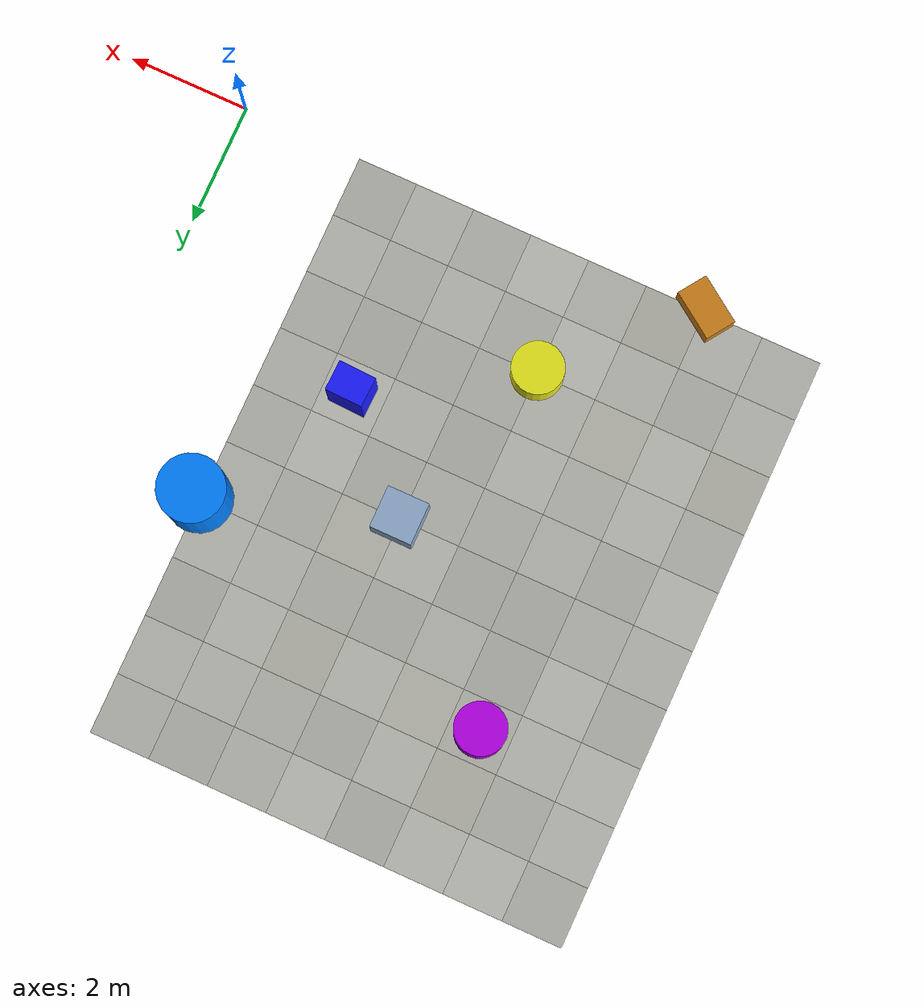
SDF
<sdf version="1.9">
 <world name="competition_world">
  <model name="t_10_00">
   <static>true</static>
   <pose>-9.500 0.500 0.025 0 0 0</pose>
   <link name="link">
    <collision name="c"><geometry><box><size>1.00 1.00 0.05</size></box></geometry></collision>
    <visual name="v">
     <geometry><box><size>1.00 1.00 0.05</size></box></geometry>
     <material>
      <ambient>0.713 0.713 0.683 1</ambient>
      <diffuse>0.713 0.713 0.683 1</diffuse>
      <specular>0.060 0.060 0.060 1</specular>
     </material>
    </visual>
   </link>
  </model>
  <model name="t_10_01">
   <static>true</static>
   <pose>-8.500 0.500 0.025 0 0 0</pose>
   <link name="link">
    <collision name="c"><geometry><box><size>1.00 1.00 0.05</size></box></geometry></collision>
    <visual name="v">
     <geometry><box><size>1.00 1.00 0.05</size></box></geometry>
     <material>
      <ambient>0.720 0.720 0.690 1</ambient>
      <diffuse>0.720 0.720 0.690 1</diffuse>
      <specular>0.060 0.060 0.060 1</specular>
     </material>
    </visual>
   </link>
  </model>
  <model name="t_10_02">
   <static>true</static>
   <pose>-7.500 0.500 0.025 0 0 0</pose>
   <link name="link">
    <collision name="c"><geometry><box><size>1.00 1.00 0.05</size></box></geometry></collision>
    <visual name="v">
     <geometry><box><size>1.00 1.00 0.05</size></box></geometry>
     <material>
      <ambient>0.684 0.684 0.654 1</ambient>
      <diffuse>0.684 0.684 0.654 1</diffuse>
      <specular>0.060 0.060 0.060 1</specular>
     </material>
    </visual>
   </link>
  </model>
  <model name="t_10_03">
   <static>true</static>
   <pose>-6.500 0.500 0.025 0 0 0</pose>
   <link name="link">
    <collision name="c"><geometry><box><size>1.00 1.00 0.05</size></box></geometry></collision>
    <visual name="v">
     <geometry><box><size>1.00 1.00 0.05</size></box></geometry>
     <material>
      <ambient>0.713 0.713 0.683 1</ambient>
      <diffuse>0.713 0.713 0.683 1</diffuse>
      <specular>0.060 0.060 0.060 1</specular>
     </material>
    </visual>
   </link>
  </model>
  <model name="t_10_04">
   <static>true</static>
   <pose>-5.500 0.500 0.025 0 0 0</pose>
   <link name="link">
    <collision name="c"><geometry><box><size>1.00 1.00 0.05</size></box></geometry></collision>
    <visual name="v">
     <geometry><box><size>1.00 1.00 0.05</size></box></geometry>
     <material>
      <ambient>0.739 0.739 0.709 1</ambient>
      <diffuse>0.739 0.739 0.709 1</diffuse>
      <specular>0.060 0.060 0.060 1</specular>
     </material>
    </visual>
   </link>
  </model>
  <model name="t_10_05">
   <static>true</static>
   <pose>-4.500 0.500 0.025 0 0 0</pose>
   <link name="link">
    <collision name="c"><geometry><box><size>1.00 1.00 0.05</size></box></geometry></collision>
    <visual name="v">
     <geometry><box><size>1.00 1.00 0.05</size></box></geometry>
     <material>
      <ambient>0.703 0.703 0.673 1</ambient>
      <diffuse>0.703 0.703 0.673 1</diffuse>
      <specular>0.060 0.060 0.060 1</specular>
     </material>
    </visual>
   </link>
  </model>
  <model name="t_10_06">
   <static>true</static>
   <pose>-3.500 0.500 0.025 0 0 0</pose>
   <link name="link">
    <collision name="c"><geometry><box><size>1.00 1.00 0.05</size></box></geometry></collision>
    <visual name="v">
     <geometry><box><size>1.00 1.00 0.05</size></box></geometry>
     <material>
      <ambient>0.723 0.723 0.693 1</ambient>
      <diffuse>0.723 0.723 0.693 1</diffuse>
      <specular>0.060 0.060 0.060 1</specular>
     </material>
    </visual>
   </link>
  </model>
  <model name="t_10_07">
   <static>true</static>
   <pose>-2.500 0.500 0.025 0 0 0</pose>
   <link name="link">
    <collision name="c"><geometry><box><size>1.00 1.00 0.05</size></box></geometry></collision>
    <visual name="v">
     <geometry><box><size>1.00 1.00 0.05</size></box></geometry>
     <material>
      <ambient>0.691 0.691 0.661 1</ambient>
      <diffuse>0.691 0.691 0.661 1</diffuse>
      <specular>0.060 0.060 0.060 1</specular>
     </material>
    </visual>
   </link>
  </model>
  <model name="t_11_00">
   <static>true</static>
   <pose>-9.500 1.500 0.025 0 0 0</pose>
   <link name="link">
    <collision name="c"><geometry><box><size>1.00 1.00 0.05</size></box></geometry></collision>
    <visual name="v">
     <geometry><box><size>1.00 1.00 0.05</size></box></geometry>
     <material>
      <ambient>0.722 0.722 0.692 1</ambient>
      <diffuse>0.722 0.722 0.692 1</diffuse>
      <specular>0.060 0.060 0.060 1</specular>
     </material>
    </visual>
   </link>
  </model>
  <model name="t_11_01">
   <static>true</static>
   <pose>-8.500 1.500 0.025 0 0 0</pose>
   <link name="link">
    <collision name="c"><geometry><box><size>1.00 1.00 0.05</size></box></geometry></collision>
    <visual name="v">
     <geometry><box><size>1.00 1.00 0.05</size></box></geometry>
     <material>
      <ambient>0.693 0.693 0.663 1</ambient>
      <diffuse>0.693 0.693 0.663 1</diffuse>
      <specular>0.060 0.060 0.060 1</specular>
     </material>
    </visual>
   </link>
  </model>
  <model name="t_11_02">
   <static>true</static>
   <pose>-7.500 1.500 0.025 0 0 0</pose>
   <link name="link">
    <collision name="c"><geometry><box><size>1.00 1.00 0.05</size></box></geometry></collision>
    <visual name="v">
     <geometry><box><size>1.00 1.00 0.05</size></box></geometry>
     <material>
      <ambient>0.717 0.717 0.687 1</ambient>
      <diffuse>0.717 0.717 0.687 1</diffuse>
      <specular>0.060 0.060 0.060 1</specular>
     </material>
    </visual>
   </link>
  </model>
  <model name="t_11_03">
   <static>true</static>
   <pose>-6.500 1.500 0.025 0 0 0</pose>
   <link name="link">
    <collision name="c"><geometry><box><size>1.00 1.00 0.05</size></box></geometry></collision>
    <visual name="v">
     <geometry><box><size>1.00 1.00 0.05</size></box></geometry>
     <material>
      <ambient>0.740 0.740 0.710 1</ambient>
      <diffuse>0.740 0.740 0.710 1</diffuse>
      <specular>0.060 0.060 0.060 1</specular>
     </material>
    </visual>
   </link>
  </model>
  <model name="t_11_04">
   <static>true</static>
   <pose>-5.500 1.500 0.025 0 0 0</pose>
   <link name="link">
    <collision name="c"><geometry><box><size>1.00 1.00 0.05</size></box></geometry></collision>
    <visual name="v">
     <geometry><box><size>1.00 1.00 0.05</size></box></geometry>
     <material>
      <ambient>0.698 0.698 0.668 1</ambient>
      <diffuse>0.698 0.698 0.668 1</diffuse>
      <specular>0.060 0.060 0.060 1</specular>
     </material>
    </visual>
   </link>
  </model>
  <model name="t_11_05">
   <static>true</static>
   <pose>-4.500 1.500 0.025 0 0 0</pose>
   <link name="link">
    <collision name="c"><geometry><box><size>1.00 1.00 0.05</size></box></geometry></collision>
    <visual name="v">
     <geometry><box><size>1.00 1.00 0.05</size></box></geometry>
     <material>
      <ambient>0.720 0.720 0.690 1</ambient>
      <diffuse>0.720 0.720 0.690 1</diffuse>
      <specular>0.060 0.060 0.060 1</specular>
     </material>
    </visual>
   </link>
  </model>
  <model name="t_11_06">
   <static>true</static>
   <pose>-3.500 1.500 0.025 0 0 0</pose>
   <link name="link">
    <collision name="c"><geometry><box><size>1.00 1.00 0.05</size></box></geometry></collision>
    <visual name="v">
     <geometry><box><size>1.00 1.00 0.05</size></box></geometry>
     <material>
      <ambient>0.700 0.700 0.670 1</ambient>
      <diffuse>0.700 0.700 0.670 1</diffuse>
      <specular>0.060 0.060 0.060 1</specular>
     </material>
    </visual>
   </link>
  </model>
  <model name="t_11_07">
   <static>true</static>
   <pose>-2.500 1.500 0.025 0 0 0</pose>
   <link name="link">
    <collision name="c"><geometry><box><size>1.00 1.00 0.05</size></box></geometry></collision>
    <visual name="v">
     <geometry><box><size>1.00 1.00 0.05</size></box></geometry>
     <material>
      <ambient>0.719 0.719 0.689 1</ambient>
      <diffuse>0.719 0.719 0.689 1</diffuse>
      <specular>0.060 0.060 0.060 1</specular>
     </material>
    </visual>
   </link>
  </model>
  <model name="t_12_00">
   <static>true</static>
   <pose>-9.500 2.500 0.025 0 0 0</pose>
   <link name="link">
    <collision name="c"><geometry><box><size>1.00 1.00 0.05</size></box></geometry></collision>
    <visual name="v">
     <geometry><box><size>1.00 1.00 0.05</size></box></geometry>
     <material>
      <ambient>0.694 0.694 0.664 1</ambient>
      <diffuse>0.694 0.694 0.664 1</diffuse>
      <specular>0.060 0.060 0.060 1</specular>
     </material>
    </visual>
   </link>
  </model>
  <model name="t_12_01">
   <static>true</static>
   <pose>-8.500 2.500 0.025 0 0 0</pose>
   <link name="link">
    <collision name="c"><geometry><box><size>1.00 1.00 0.05</size></box></geometry></collision>
    <visual name="v">
     <geometry><box><size>1.00 1.00 0.05</size></box></geometry>
     <material>
      <ambient>0.737 0.737 0.707 1</ambient>
      <diffuse>0.737 0.737 0.707 1</diffuse>
      <specular>0.060 0.060 0.060 1</specular>
     </material>
    </visual>
   </link>
  </model>
  <model name="t_12_02">
   <static>true</static>
   <pose>-7.500 2.500 0.025 0 0 0</pose>
   <link name="link">
    <collision name="c"><geometry><box><size>1.00 1.00 0.05</size></box></geometry></collision>
    <visual name="v">
     <geometry><box><size>1.00 1.00 0.05</size></box></geometry>
     <material>
      <ambient>0.709 0.709 0.679 1</ambient>
      <diffuse>0.709 0.709 0.679 1</diffuse>
      <specular>0.060 0.060 0.060 1</specular>
     </material>
    </visual>
   </link>
  </model>
  <model name="t_12_03">
   <static>true</static>
   <pose>-6.500 2.500 0.025 0 0 0</pose>
   <link name="link">
    <collision name="c"><geometry><box><size>1.00 1.00 0.05</size></box></geometry></collision>
    <visual name="v">
     <geometry><box><size>1.00 1.00 0.05</size></box></geometry>
     <material>
      <ambient>0.721 0.721 0.691 1</ambient>
      <diffuse>0.721 0.721 0.691 1</diffuse>
      <specular>0.060 0.060 0.060 1</specular>
     </material>
    </visual>
   </link>
  </model>
  <model name="t_12_04">
   <static>true</static>
   <pose>-5.500 2.500 0.025 0 0 0</pose>
   <link name="link">
    <collision name="c"><geometry><box><size>1.00 1.00 0.05</size></box></geometry></collision>
    <visual name="v">
     <geometry><box><size>1.00 1.00 0.05</size></box></geometry>
     <material>
      <ambient>0.697 0.697 0.667 1</ambient>
      <diffuse>0.697 0.697 0.667 1</diffuse>
      <specular>0.060 0.060 0.060 1</specular>
     </material>
    </visual>
   </link>
  </model>
  <model name="t_12_05">
   <static>true</static>
   <pose>-4.500 2.500 0.025 0 0 0</pose>
   <link name="link">
    <collision name="c"><geometry><box><size>1.00 1.00 0.05</size></box></geometry></collision>
    <visual name="v">
     <geometry><box><size>1.00 1.00 0.05</size></box></geometry>
     <material>
      <ambient>0.690 0.690 0.660 1</ambient>
      <diffuse>0.690 0.690 0.660 1</diffuse>
      <specular>0.060 0.060 0.060 1</specular>
     </material>
    </visual>
   </link>
  </model>
  <model name="t_12_06">
   <static>true</static>
   <pose>-3.500 2.500 0.025 0 0 0</pose>
   <link name="link">
    <collision name="c"><geometry><box><size>1.00 1.00 0.05</size></box></geometry></collision>
    <visual name="v">
     <geometry><box><size>1.00 1.00 0.05</size></box></geometry>
     <material>
      <ambient>0.681 0.681 0.651 1</ambient>
      <diffuse>0.681 0.681 0.651 1</diffuse>
      <specular>0.060 0.060 0.060 1</specular>
     </material>
    </visual>
   </link>
  </model>
  <model name="t_12_07">
   <static>true</static>
   <pose>-2.500 2.500 0.025 0 0 0</pose>
   <link name="link">
    <collision name="c"><geometry><box><size>1.00 1.00 0.05</size></box></geometry></collision>
    <visual name="v">
     <geometry><box><size>1.00 1.00 0.05</size></box></geometry>
     <material>
      <ambient>0.698 0.698 0.668 1</ambient>
      <diffuse>0.698 0.698 0.668 1</diffuse>
      <specular>0.060 0.060 0.060 1</specular>
     </material>
    </visual>
   </link>
  </model>
  <model name="t_13_00">
   <static>true</static>
   <pose>-9.500 3.500 0.025 0 0 0</pose>
   <link name="link">
    <collision name="c"><geometry><box><size>1.00 1.00 0.05</size></box></geometry></collision>
    <visual name="v">
     <geometry><box><size>1.00 1.00 0.05</size></box></geometry>
     <material>
      <ambient>0.703 0.703 0.673 1</ambient>
      <diffuse>0.703 0.703 0.673 1</diffuse>
      <specular>0.060 0.060 0.060 1</specular>
     </material>
    </visual>
   </link>
  </model>
  <model name="t_13_01">
   <static>true</static>
   <pose>-8.500 3.500 0.025 0 0 0</pose>
   <link name="link">
    <collision name="c"><geometry><box><size>1.00 1.00 0.05</size></box></geometry></collision>
    <visual name="v">
     <geometry><box><size>1.00 1.00 0.05</size></box></geometry>
     <material>
      <ambient>0.732 0.732 0.702 1</ambient>
      <diffuse>0.732 0.732 0.702 1</diffuse>
      <specular>0.060 0.060 0.060 1</specular>
     </material>
    </visual>
   </link>
  </model>
  <model name="t_13_02">
   <static>true</static>
   <pose>-7.500 3.500 0.025 0 0 0</pose>
   <link name="link">
    <collision name="c"><geometry><box><size>1.00 1.00 0.05</size></box></geometry></collision>
    <visual name="v">
     <geometry><box><size>1.00 1.00 0.05</size></box></geometry>
     <material>
      <ambient>0.706 0.706 0.676 1</ambient>
      <diffuse>0.706 0.706 0.676 1</diffuse>
      <specular>0.060 0.060 0.060 1</specular>
     </material>
    </visual>
   </link>
  </model>
  <model name="t_13_03">
   <static>true</static>
   <pose>-6.500 3.500 0.025 0 0 0</pose>
   <link name="link">
    <collision name="c"><geometry><box><size>1.00 1.00 0.05</size></box></geometry></collision>
    <visual name="v">
     <geometry><box><size>1.00 1.00 0.05</size></box></geometry>
     <material>
      <ambient>0.725 0.725 0.695 1</ambient>
      <diffuse>0.725 0.725 0.695 1</diffuse>
      <specular>0.060 0.060 0.060 1</specular>
     </material>
    </visual>
   </link>
  </model>
  <model name="t_13_04">
   <static>true</static>
   <pose>-5.500 3.500 0.025 0 0 0</pose>
   <link name="link">
    <collision name="c"><geometry><box><size>1.00 1.00 0.05</size></box></geometry></collision>
    <visual name="v">
     <geometry><box><size>1.00 1.00 0.05</size></box></geometry>
     <material>
      <ambient>0.681 0.681 0.651 1</ambient>
      <diffuse>0.681 0.681 0.651 1</diffuse>
      <specular>0.060 0.060 0.060 1</specular>
     </material>
    </visual>
   </link>
  </model>
  <model name="t_13_05">
   <static>true</static>
   <pose>-4.500 3.500 0.025 0 0 0</pose>
   <link name="link">
    <collision name="c"><geometry><box><size>1.00 1.00 0.05</size></box></geometry></collision>
    <visual name="v">
     <geometry><box><size>1.00 1.00 0.05</size></box></geometry>
     <material>
      <ambient>0.716 0.716 0.686 1</ambient>
      <diffuse>0.716 0.716 0.686 1</diffuse>
      <specular>0.060 0.060 0.060 1</specular>
     </material>
    </visual>
   </link>
  </model>
  <model name="t_13_06">
   <static>true</static>
   <pose>-3.500 3.500 0.025 0 0 0</pose>
   <link name="link">
    <collision name="c"><geometry><box><size>1.00 1.00 0.05</size></box></geometry></collision>
    <visual name="v">
     <geometry><box><size>1.00 1.00 0.05</size></box></geometry>
     <material>
      <ambient>0.737 0.737 0.707 1</ambient>
      <diffuse>0.737 0.737 0.707 1</diffuse>
      <specular>0.060 0.060 0.060 1</specular>
     </material>
    </visual>
   </link>
  </model>
  <model name="t_13_07">
   <static>true</static>
   <pose>-2.500 3.500 0.025 0 0 0</pose>
   <link name="link">
    <collision name="c"><geometry><box><size>1.00 1.00 0.05</size></box></geometry></collision>
    <visual name="v">
     <geometry><box><size>1.00 1.00 0.05</size></box></geometry>
     <material>
      <ambient>0.706 0.706 0.676 1</ambient>
      <diffuse>0.706 0.706 0.676 1</diffuse>
      <specular>0.060 0.060 0.060 1</specular>
     </material>
    </visual>
   </link>
  </model>
  <model name="t_14_00">
   <static>true</static>
   <pose>-9.500 4.500 0.025 0 0 0</pose>
   <link name="link">
    <collision name="c"><geometry><box><size>1.00 1.00 0.05</size></box></geometry></collision>
    <visual name="v">
     <geometry><box><size>1.00 1.00 0.05</size></box></geometry>
     <material>
      <ambient>0.734 0.734 0.704 1</ambient>
      <diffuse>0.734 0.734 0.704 1</diffuse>
      <specular>0.060 0.060 0.060 1</specular>
     </material>
    </visual>
   </link>
  </model>
  <model name="t_14_01">
   <static>true</static>
   <pose>-8.500 4.500 0.025 0 0 0</pose>
   <link name="link">
    <collision name="c"><geometry><box><size>1.00 1.00 0.05</size></box></geometry></collision>
    <visual name="v">
     <geometry><box><size>1.00 1.00 0.05</size></box></geometry>
     <material>
      <ambient>0.690 0.690 0.660 1</ambient>
      <diffuse>0.690 0.690 0.660 1</diffuse>
      <specular>0.060 0.060 0.060 1</specular>
     </material>
    </visual>
   </link>
  </model>
  <model name="t_14_02">
   <static>true</static>
   <pose>-7.500 4.500 0.025 0 0 0</pose>
   <link name="link">
    <collision name="c"><geometry><box><size>1.00 1.00 0.05</size></box></geometry></collision>
    <visual name="v">
     <geometry><box><size>1.00 1.00 0.05</size></box></geometry>
     <material>
      <ambient>0.710 0.710 0.680 1</ambient>
      <diffuse>0.710 0.710 0.680 1</diffuse>
      <specular>0.060 0.060 0.060 1</specular>
     </material>
    </visual>
   </link>
  </model>
  <model name="t_14_03">
   <static>true</static>
   <pose>-6.500 4.500 0.025 0 0 0</pose>
   <link name="link">
    <collision name="c"><geometry><box><size>1.00 1.00 0.05</size></box></geometry></collision>
    <visual name="v">
     <geometry><box><size>1.00 1.00 0.05</size></box></geometry>
     <material>
      <ambient>0.698 0.698 0.668 1</ambient>
      <diffuse>0.698 0.698 0.668 1</diffuse>
      <specular>0.060 0.060 0.060 1</specular>
     </material>
    </visual>
   </link>
  </model>
  <model name="t_14_04">
   <static>true</static>
   <pose>-5.500 4.500 0.025 0 0 0</pose>
   <link name="link">
    <collision name="c"><geometry><box><size>1.00 1.00 0.05</size></box></geometry></collision>
    <visual name="v">
     <geometry><box><size>1.00 1.00 0.05</size></box></geometry>
     <material>
      <ambient>0.701 0.701 0.671 1</ambient>
      <diffuse>0.701 0.701 0.671 1</diffuse>
      <specular>0.060 0.060 0.060 1</specular>
     </material>
    </visual>
   </link>
  </model>
  <model name="t_14_05">
   <static>true</static>
   <pose>-4.500 4.500 0.025 0 0 0</pose>
   <link name="link">
    <collision name="c"><geometry><box><size>1.00 1.00 0.05</size></box></geometry></collision>
    <visual name="v">
     <geometry><box><size>1.00 1.00 0.05</size></box></geometry>
     <material>
      <ambient>0.686 0.686 0.656 1</ambient>
      <diffuse>0.686 0.686 0.656 1</diffuse>
      <specular>0.060 0.060 0.060 1</specular>
     </material>
    </visual>
   </link>
  </model>
  <model name="t_14_06">
   <static>true</static>
   <pose>-3.500 4.500 0.025 0 0 0</pose>
   <link name="link">
    <collision name="c"><geometry><box><size>1.00 1.00 0.05</size></box></geometry></collision>
    <visual name="v">
     <geometry><box><size>1.00 1.00 0.05</size></box></geometry>
     <material>
      <ambient>0.734 0.734 0.704 1</ambient>
      <diffuse>0.734 0.734 0.704 1</diffuse>
      <specular>0.060 0.060 0.060 1</specular>
     </material>
    </visual>
   </link>
  </model>
  <model name="t_14_07">
   <static>true</static>
   <pose>-2.500 4.500 0.025 0 0 0</pose>
   <link name="link">
    <collision name="c"><geometry><box><size>1.00 1.00 0.05</size></box></geometry></collision>
    <visual name="v">
     <geometry><box><size>1.00 1.00 0.05</size></box></geometry>
     <material>
      <ambient>0.695 0.695 0.665 1</ambient>
      <diffuse>0.695 0.695 0.665 1</diffuse>
      <specular>0.060 0.060 0.060 1</specular>
     </material>
    </visual>
   </link>
  </model>
  <model name="t_15_00">
   <static>true</static>
   <pose>-9.500 5.500 0.025 0 0 0</pose>
   <link name="link">
    <collision name="c"><geometry><box><size>1.00 1.00 0.05</size></box></geometry></collision>
    <visual name="v">
     <geometry><box><size>1.00 1.00 0.05</size></box></geometry>
     <material>
      <ambient>0.717 0.717 0.687 1</ambient>
      <diffuse>0.717 0.717 0.687 1</diffuse>
      <specular>0.060 0.060 0.060 1</specular>
     </material>
    </visual>
   </link>
  </model>
  <model name="t_15_01">
   <static>true</static>
   <pose>-8.500 5.500 0.025 0 0 0</pose>
   <link name="link">
    <collision name="c"><geometry><box><size>1.00 1.00 0.05</size></box></geometry></collision>
    <visual name="v">
     <geometry><box><size>1.00 1.00 0.05</size></box></geometry>
     <material>
      <ambient>0.705 0.705 0.675 1</ambient>
      <diffuse>0.705 0.705 0.675 1</diffuse>
      <specular>0.060 0.060 0.060 1</specular>
     </material>
    </visual>
   </link>
  </model>
  <model name="t_15_02">
   <static>true</static>
   <pose>-7.500 5.500 0.025 0 0 0</pose>
   <link name="link">
    <collision name="c"><geometry><box><size>1.00 1.00 0.05</size></box></geometry></collision>
    <visual name="v">
     <geometry><box><size>1.00 1.00 0.05</size></box></geometry>
     <material>
      <ambient>0.681 0.681 0.651 1</ambient>
      <diffuse>0.681 0.681 0.651 1</diffuse>
      <specular>0.060 0.060 0.060 1</specular>
     </material>
    </visual>
   </link>
  </model>
  <model name="t_15_03">
   <static>true</static>
   <pose>-6.500 5.500 0.025 0 0 0</pose>
   <link name="link">
    <collision name="c"><geometry><box><size>1.00 1.00 0.05</size></box></geometry></collision>
    <visual name="v">
     <geometry><box><size>1.00 1.00 0.05</size></box></geometry>
     <material>
      <ambient>0.682 0.682 0.652 1</ambient>
      <diffuse>0.682 0.682 0.652 1</diffuse>
      <specular>0.060 0.060 0.060 1</specular>
     </material>
    </visual>
   </link>
  </model>
  <model name="t_15_04">
   <static>true</static>
   <pose>-5.500 5.500 0.025 0 0 0</pose>
   <link name="link">
    <collision name="c"><geometry><box><size>1.00 1.00 0.05</size></box></geometry></collision>
    <visual name="v">
     <geometry><box><size>1.00 1.00 0.05</size></box></geometry>
     <material>
      <ambient>0.724 0.724 0.694 1</ambient>
      <diffuse>0.724 0.724 0.694 1</diffuse>
      <specular>0.060 0.060 0.060 1</specular>
     </material>
    </visual>
   </link>
  </model>
  <model name="t_15_05">
   <static>true</static>
   <pose>-4.500 5.500 0.025 0 0 0</pose>
   <link name="link">
    <collision name="c"><geometry><box><size>1.00 1.00 0.05</size></box></geometry></collision>
    <visual name="v">
     <geometry><box><size>1.00 1.00 0.05</size></box></geometry>
     <material>
      <ambient>0.709 0.709 0.679 1</ambient>
      <diffuse>0.709 0.709 0.679 1</diffuse>
      <specular>0.060 0.060 0.060 1</specular>
     </material>
    </visual>
   </link>
  </model>
  <model name="t_15_06">
   <static>true</static>
   <pose>-3.500 5.500 0.025 0 0 0</pose>
   <link name="link">
    <collision name="c"><geometry><box><size>1.00 1.00 0.05</size></box></geometry></collision>
    <visual name="v">
     <geometry><box><size>1.00 1.00 0.05</size></box></geometry>
     <material>
      <ambient>0.697 0.697 0.667 1</ambient>
      <diffuse>0.697 0.697 0.667 1</diffuse>
      <specular>0.060 0.060 0.060 1</specular>
     </material>
    </visual>
   </link>
  </model>
  <model name="t_15_07">
   <static>true</static>
   <pose>-2.500 5.500 0.025 0 0 0</pose>
   <link name="link">
    <collision name="c"><geometry><box><size>1.00 1.00 0.05</size></box></geometry></collision>
    <visual name="v">
     <geometry><box><size>1.00 1.00 0.05</size></box></geometry>
     <material>
      <ambient>0.712 0.712 0.682 1</ambient>
      <diffuse>0.712 0.712 0.682 1</diffuse>
      <specular>0.060 0.060 0.060 1</specular>
     </material>
    </visual>
   </link>
  </model>
  <model name="t_16_00">
   <static>true</static>
   <pose>-9.500 6.500 0.025 0 0 0</pose>
   <link name="link">
    <collision name="c"><geometry><box><size>1.00 1.00 0.05</size></box></geometry></collision>
    <visual name="v">
     <geometry><box><size>1.00 1.00 0.05</size></box></geometry>
     <material>
      <ambient>0.697 0.697 0.667 1</ambient>
      <diffuse>0.697 0.697 0.667 1</diffuse>
      <specular>0.060 0.060 0.060 1</specular>
     </material>
    </visual>
   </link>
  </model>
  <model name="t_16_01">
   <static>true</static>
   <pose>-8.500 6.500 0.025 0 0 0</pose>
   <link name="link">
    <collision name="c"><geometry><box><size>1.00 1.00 0.05</size></box></geometry></collision>
    <visual name="v">
     <geometry><box><size>1.00 1.00 0.05</size></box></geometry>
     <material>
      <ambient>0.737 0.737 0.707 1</ambient>
      <diffuse>0.737 0.737 0.707 1</diffuse>
      <specular>0.060 0.060 0.060 1</specular>
     </material>
    </visual>
   </link>
  </model>
  <model name="t_16_02">
   <static>true</static>
   <pose>-7.500 6.500 0.025 0 0 0</pose>
   <link name="link">
    <collision name="c"><geometry><box><size>1.00 1.00 0.05</size></box></geometry></collision>
    <visual name="v">
     <geometry><box><size>1.00 1.00 0.05</size></box></geometry>
     <material>
      <ambient>0.683 0.683 0.653 1</ambient>
      <diffuse>0.683 0.683 0.653 1</diffuse>
      <specular>0.060 0.060 0.060 1</specular>
     </material>
    </visual>
   </link>
  </model>
  <model name="t_16_03">
   <static>true</static>
   <pose>-6.500 6.500 0.025 0 0 0</pose>
   <link name="link">
    <collision name="c"><geometry><box><size>1.00 1.00 0.05</size></box></geometry></collision>
    <visual name="v">
     <geometry><box><size>1.00 1.00 0.05</size></box></geometry>
     <material>
      <ambient>0.713 0.713 0.683 1</ambient>
      <diffuse>0.713 0.713 0.683 1</diffuse>
      <specular>0.060 0.060 0.060 1</specular>
     </material>
    </visual>
   </link>
  </model>
  <model name="t_16_04">
   <static>true</static>
   <pose>-5.500 6.500 0.025 0 0 0</pose>
   <link name="link">
    <collision name="c"><geometry><box><size>1.00 1.00 0.05</size></box></geometry></collision>
    <visual name="v">
     <geometry><box><size>1.00 1.00 0.05</size></box></geometry>
     <material>
      <ambient>0.685 0.685 0.655 1</ambient>
      <diffuse>0.685 0.685 0.655 1</diffuse>
      <specular>0.060 0.060 0.060 1</specular>
     </material>
    </visual>
   </link>
  </model>
  <model name="t_16_05">
   <static>true</static>
   <pose>-4.500 6.500 0.025 0 0 0</pose>
   <link name="link">
    <collision name="c"><geometry><box><size>1.00 1.00 0.05</size></box></geometry></collision>
    <visual name="v">
     <geometry><box><size>1.00 1.00 0.05</size></box></geometry>
     <material>
      <ambient>0.691 0.691 0.661 1</ambient>
      <diffuse>0.691 0.691 0.661 1</diffuse>
      <specular>0.060 0.060 0.060 1</specular>
     </material>
    </visual>
   </link>
  </model>
  <model name="t_16_06">
   <static>true</static>
   <pose>-3.500 6.500 0.025 0 0 0</pose>
   <link name="link">
    <collision name="c"><geometry><box><size>1.00 1.00 0.05</size></box></geometry></collision>
    <visual name="v">
     <geometry><box><size>1.00 1.00 0.05</size></box></geometry>
     <material>
      <ambient>0.718 0.718 0.688 1</ambient>
      <diffuse>0.718 0.718 0.688 1</diffuse>
      <specular>0.060 0.060 0.060 1</specular>
     </material>
    </visual>
   </link>
  </model>
  <model name="t_16_07">
   <static>true</static>
   <pose>-2.500 6.500 0.025 0 0 0</pose>
   <link name="link">
    <collision name="c"><geometry><box><size>1.00 1.00 0.05</size></box></geometry></collision>
    <visual name="v">
     <geometry><box><size>1.00 1.00 0.05</size></box></geometry>
     <material>
      <ambient>0.722 0.722 0.692 1</ambient>
      <diffuse>0.722 0.722 0.692 1</diffuse>
      <specular>0.060 0.060 0.060 1</specular>
     </material>
    </visual>
   </link>
  </model>
  <model name="t_17_00">
   <static>true</static>
   <pose>-9.500 7.500 0.025 0 0 0</pose>
   <link name="link">
    <collision name="c"><geometry><box><size>1.00 1.00 0.05</size></box></geometry></collision>
    <visual name="v">
     <geometry><box><size>1.00 1.00 0.05</size></box></geometry>
     <material>
      <ambient>0.737 0.737 0.707 1</ambient>
      <diffuse>0.737 0.737 0.707 1</diffuse>
      <specular>0.060 0.060 0.060 1</specular>
     </material>
    </visual>
   </link>
  </model>
  <model name="t_17_01">
   <static>true</static>
   <pose>-8.500 7.500 0.025 0 0 0</pose>
   <link name="link">
    <collision name="c"><geometry><box><size>1.00 1.00 0.05</size></box></geometry></collision>
    <visual name="v">
     <geometry><box><size>1.00 1.00 0.05</size></box></geometry>
     <material>
      <ambient>0.725 0.725 0.695 1</ambient>
      <diffuse>0.725 0.725 0.695 1</diffuse>
      <specular>0.060 0.060 0.060 1</specular>
     </material>
    </visual>
   </link>
  </model>
  <model name="t_17_02">
   <static>true</static>
   <pose>-7.500 7.500 0.025 0 0 0</pose>
   <link name="link">
    <collision name="c"><geometry><box><size>1.00 1.00 0.05</size></box></geometry></collision>
    <visual name="v">
     <geometry><box><size>1.00 1.00 0.05</size></box></geometry>
     <material>
      <ambient>0.700 0.700 0.670 1</ambient>
      <diffuse>0.700 0.700 0.670 1</diffuse>
      <specular>0.060 0.060 0.060 1</specular>
     </material>
    </visual>
   </link>
  </model>
  <model name="t_17_03">
   <static>true</static>
   <pose>-6.500 7.500 0.025 0 0 0</pose>
   <link name="link">
    <collision name="c"><geometry><box><size>1.00 1.00 0.05</size></box></geometry></collision>
    <visual name="v">
     <geometry><box><size>1.00 1.00 0.05</size></box></geometry>
     <material>
      <ambient>0.709 0.709 0.679 1</ambient>
      <diffuse>0.709 0.709 0.679 1</diffuse>
      <specular>0.060 0.060 0.060 1</specular>
     </material>
    </visual>
   </link>
  </model>
  <model name="t_17_04">
   <static>true</static>
   <pose>-5.500 7.500 0.025 0 0 0</pose>
   <link name="link">
    <collision name="c"><geometry><box><size>1.00 1.00 0.05</size></box></geometry></collision>
    <visual name="v">
     <geometry><box><size>1.00 1.00 0.05</size></box></geometry>
     <material>
      <ambient>0.724 0.724 0.694 1</ambient>
      <diffuse>0.724 0.724 0.694 1</diffuse>
      <specular>0.060 0.060 0.060 1</specular>
     </material>
    </visual>
   </link>
  </model>
  <model name="t_17_05">
   <static>true</static>
   <pose>-4.500 7.500 0.025 0 0 0</pose>
   <link name="link">
    <collision name="c"><geometry><box><size>1.00 1.00 0.05</size></box></geometry></collision>
    <visual name="v">
     <geometry><box><size>1.00 1.00 0.05</size></box></geometry>
     <material>
      <ambient>0.694 0.694 0.664 1</ambient>
      <diffuse>0.694 0.694 0.664 1</diffuse>
      <specular>0.060 0.060 0.060 1</specular>
     </material>
    </visual>
   </link>
  </model>
  <model name="t_17_06">
   <static>true</static>
   <pose>-3.500 7.500 0.025 0 0 0</pose>
   <link name="link">
    <collision name="c"><geometry><box><size>1.00 1.00 0.05</size></box></geometry></collision>
    <visual name="v">
     <geometry><box><size>1.00 1.00 0.05</size></box></geometry>
     <material>
      <ambient>0.728 0.728 0.698 1</ambient>
      <diffuse>0.728 0.728 0.698 1</diffuse>
      <specular>0.060 0.060 0.060 1</specular>
     </material>
    </visual>
   </link>
  </model>
  <model name="t_17_07">
   <static>true</static>
   <pose>-2.500 7.500 0.025 0 0 0</pose>
   <link name="link">
    <collision name="c"><geometry><box><size>1.00 1.00 0.05</size></box></geometry></collision>
    <visual name="v">
     <geometry><box><size>1.00 1.00 0.05</size></box></geometry>
     <material>
      <ambient>0.683 0.683 0.653 1</ambient>
      <diffuse>0.683 0.683 0.653 1</diffuse>
      <specular>0.060 0.060 0.060 1</specular>
     </material>
    </visual>
   </link>
  </model>
  <model name="t_18_00">
   <static>true</static>
   <pose>-9.500 8.500 0.025 0 0 0</pose>
   <link name="link">
    <collision name="c"><geometry><box><size>1.00 1.00 0.05</size></box></geometry></collision>
    <visual name="v">
     <geometry><box><size>1.00 1.00 0.05</size></box></geometry>
     <material>
      <ambient>0.727 0.727 0.697 1</ambient>
      <diffuse>0.727 0.727 0.697 1</diffuse>
      <specular>0.060 0.060 0.060 1</specular>
     </material>
    </visual>
   </link>
  </model>
  <model name="t_18_01">
   <static>true</static>
   <pose>-8.500 8.500 0.025 0 0 0</pose>
   <link name="link">
    <collision name="c"><geometry><box><size>1.00 1.00 0.05</size></box></geometry></collision>
    <visual name="v">
     <geometry><box><size>1.00 1.00 0.05</size></box></geometry>
     <material>
      <ambient>0.698 0.698 0.668 1</ambient>
      <diffuse>0.698 0.698 0.668 1</diffuse>
      <specular>0.060 0.060 0.060 1</specular>
     </material>
    </visual>
   </link>
  </model>
  <model name="t_18_02">
   <static>true</static>
   <pose>-7.500 8.500 0.025 0 0 0</pose>
   <link name="link">
    <collision name="c"><geometry><box><size>1.00 1.00 0.05</size></box></geometry></collision>
    <visual name="v">
     <geometry><box><size>1.00 1.00 0.05</size></box></geometry>
     <material>
      <ambient>0.694 0.694 0.664 1</ambient>
      <diffuse>0.694 0.694 0.664 1</diffuse>
      <specular>0.060 0.060 0.060 1</specular>
     </material>
    </visual>
   </link>
  </model>
  <model name="t_18_03">
   <static>true</static>
   <pose>-6.500 8.500 0.025 0 0 0</pose>
   <link name="link">
    <collision name="c"><geometry><box><size>1.00 1.00 0.05</size></box></geometry></collision>
    <visual name="v">
     <geometry><box><size>1.00 1.00 0.05</size></box></geometry>
     <material>
      <ambient>0.726 0.726 0.696 1</ambient>
      <diffuse>0.726 0.726 0.696 1</diffuse>
      <specular>0.060 0.060 0.060 1</specular>
     </material>
    </visual>
   </link>
  </model>
  <model name="t_18_04">
   <static>true</static>
   <pose>-5.500 8.500 0.025 0 0 0</pose>
   <link name="link">
    <collision name="c"><geometry><box><size>1.00 1.00 0.05</size></box></geometry></collision>
    <visual name="v">
     <geometry><box><size>1.00 1.00 0.05</size></box></geometry>
     <material>
      <ambient>0.687 0.687 0.657 1</ambient>
      <diffuse>0.687 0.687 0.657 1</diffuse>
      <specular>0.060 0.060 0.060 1</specular>
     </material>
    </visual>
   </link>
  </model>
  <model name="t_18_05">
   <static>true</static>
   <pose>-4.500 8.500 0.025 0 0 0</pose>
   <link name="link">
    <collision name="c"><geometry><box><size>1.00 1.00 0.05</size></box></geometry></collision>
    <visual name="v">
     <geometry><box><size>1.00 1.00 0.05</size></box></geometry>
     <material>
      <ambient>0.700 0.700 0.670 1</ambient>
      <diffuse>0.700 0.700 0.670 1</diffuse>
      <specular>0.060 0.060 0.060 1</specular>
     </material>
    </visual>
   </link>
  </model>
  <model name="t_18_06">
   <static>true</static>
   <pose>-3.500 8.500 0.025 0 0 0</pose>
   <link name="link">
    <collision name="c"><geometry><box><size>1.00 1.00 0.05</size></box></geometry></collision>
    <visual name="v">
     <geometry><box><size>1.00 1.00 0.05</size></box></geometry>
     <material>
      <ambient>0.716 0.716 0.686 1</ambient>
      <diffuse>0.716 0.716 0.686 1</diffuse>
      <specular>0.060 0.060 0.060 1</specular>
     </material>
    </visual>
   </link>
  </model>
  <model name="t_18_07">
   <static>true</static>
   <pose>-2.500 8.500 0.025 0 0 0</pose>
   <link name="link">
    <collision name="c"><geometry><box><size>1.00 1.00 0.05</size></box></geometry></collision>
    <visual name="v">
     <geometry><box><size>1.00 1.00 0.05</size></box></geometry>
     <material>
      <ambient>0.710 0.710 0.680 1</ambient>
      <diffuse>0.710 0.710 0.680 1</diffuse>
      <specular>0.060 0.060 0.060 1</specular>
     </material>
    </visual>
   </link>
  </model>
  <model name="t_19_00">
   <static>true</static>
   <pose>-9.500 9.500 0.025 0 0 0</pose>
   <link name="link">
    <collision name="c"><geometry><box><size>1.00 1.00 0.05</size></box></geometry></collision>
    <visual name="v">
     <geometry><box><size>1.00 1.00 0.05</size></box></geometry>
     <material>
      <ambient>0.697 0.697 0.667 1</ambient>
      <diffuse>0.697 0.697 0.667 1</diffuse>
      <specular>0.060 0.060 0.060 1</specular>
     </material>
    </visual>
   </link>
  </model>
  <model name="t_19_01">
   <static>true</static>
   <pose>-8.500 9.500 0.025 0 0 0</pose>
   <link name="link">
    <collision name="c"><geometry><box><size>1.00 1.00 0.05</size></box></geometry></collision>
    <visual name="v">
     <geometry><box><size>1.00 1.00 0.05</size></box></geometry>
     <material>
      <ambient>0.736 0.736 0.706 1</ambient>
      <diffuse>0.736 0.736 0.706 1</diffuse>
      <specular>0.060 0.060 0.060 1</specular>
     </material>
    </visual>
   </link>
  </model>
  <model name="t_19_02">
   <static>true</static>
   <pose>-7.500 9.500 0.025 0 0 0</pose>
   <link name="link">
    <collision name="c"><geometry><box><size>1.00 1.00 0.05</size></box></geometry></collision>
    <visual name="v">
     <geometry><box><size>1.00 1.00 0.05</size></box></geometry>
     <material>
      <ambient>0.732 0.732 0.702 1</ambient>
      <diffuse>0.732 0.732 0.702 1</diffuse>
      <specular>0.060 0.060 0.060 1</specular>
     </material>
    </visual>
   </link>
  </model>
  <model name="t_19_03">
   <static>true</static>
   <pose>-6.500 9.500 0.025 0 0 0</pose>
   <link name="link">
    <collision name="c"><geometry><box><size>1.00 1.00 0.05</size></box></geometry></collision>
    <visual name="v">
     <geometry><box><size>1.00 1.00 0.05</size></box></geometry>
     <material>
      <ambient>0.686 0.686 0.656 1</ambient>
      <diffuse>0.686 0.686 0.656 1</diffuse>
      <specular>0.060 0.060 0.060 1</specular>
     </material>
    </visual>
   </link>
  </model>
  <model name="t_19_04">
   <static>true</static>
   <pose>-5.500 9.500 0.025 0 0 0</pose>
   <link name="link">
    <collision name="c"><geometry><box><size>1.00 1.00 0.05</size></box></geometry></collision>
    <visual name="v">
     <geometry><box><size>1.00 1.00 0.05</size></box></geometry>
     <material>
      <ambient>0.737 0.737 0.707 1</ambient>
      <diffuse>0.737 0.737 0.707 1</diffuse>
      <specular>0.060 0.060 0.060 1</specular>
     </material>
    </visual>
   </link>
  </model>
  <model name="t_19_05">
   <static>true</static>
   <pose>-4.500 9.500 0.025 0 0 0</pose>
   <link name="link">
    <collision name="c"><geometry><box><size>1.00 1.00 0.05</size></box></geometry></collision>
    <visual name="v">
     <geometry><box><size>1.00 1.00 0.05</size></box></geometry>
     <material>
      <ambient>0.708 0.708 0.678 1</ambient>
      <diffuse>0.708 0.708 0.678 1</diffuse>
      <specular>0.060 0.060 0.060 1</specular>
     </material>
    </visual>
   </link>
  </model>
  <model name="t_19_06">
   <static>true</static>
   <pose>-3.500 9.500 0.025 0 0 0</pose>
   <link name="link">
    <collision name="c"><geometry><box><size>1.00 1.00 0.05</size></box></geometry></collision>
    <visual name="v">
     <geometry><box><size>1.00 1.00 0.05</size></box></geometry>
     <material>
      <ambient>0.688 0.688 0.658 1</ambient>
      <diffuse>0.688 0.688 0.658 1</diffuse>
      <specular>0.060 0.060 0.060 1</specular>
     </material>
    </visual>
   </link>
  </model>
  <model name="t_19_07">
   <static>true</static>
   <pose>-2.500 9.500 0.025 0 0 0</pose>
   <link name="link">
    <collision name="c"><geometry><box><size>1.00 1.00 0.05</size></box></geometry></collision>
    <visual name="v">
     <geometry><box><size>1.00 1.00 0.05</size></box></geometry>
     <material>
      <ambient>0.702 0.702 0.672 1</ambient>
      <diffuse>0.702 0.702 0.672 1</diffuse>
      <specular>0.060 0.060 0.060 1</specular>
     </material>
    </visual>
   </link>
  </model>
  <model name="lm_01">
   <static>true</static>
   <pose>-3.50 3.50 0.56 0 0 3.103</pose>
   <link name="link">
    <collision name="c"><geometry><box><size>0.62 0.50 1.12</size></box></geometry></collision>
    <visual name="v">
     <geometry><box><size>0.62 0.50 1.12</size></box></geometry>
     <material>
      <ambient>0.100 0.100 1.000 1</ambient>
      <diffuse>0.100 0.100 1.000 1</diffuse>
      <specular>0.300 0.300 0.300 1</specular>
     </material>
    </visual>
   </link>
  </model>
  <model name="lm_05">
   <static>true</static>
   <pose>-7.50 7.50 0.77 0 0 0</pose>
   <link name="link">
    <collision name="c">
     <geometry>
      <cylinder><radius>0.41589892702829845</radius><length>1.5438400142978814</length></cylinder>
     </geometry>
    </collision>
    <visual name="v">
     <geometry>
      <cylinder><radius>0.41589892702829845</radius><length>1.5438400142978814</length></cylinder>
     </geometry>
     <material>
      <ambient>0.700 0.000 0.900 1</ambient>
      <diffuse>0.700 0.000 0.900 1</diffuse>
      <specular>0.400 0.400 0.400 1</specular>
     </material>
    </visual>
   </link>
  </model>
  <model name="lm_10">
   <static>true</static>
   <pose>-8.00 0.00 0.22 0 0 0.968</pose>
   <link name="link">
    <collision name="c"><geometry><box><size>0.52 0.86 0.43</size></box></geometry></collision>
    <visual name="v">
     <geometry><box><size>0.52 0.86 0.43</size></box></geometry>
     <material>
      <ambient>0.800 0.500 0.100 1</ambient>
      <diffuse>0.800 0.500 0.100 1</diffuse>
      <specular>0.300 0.300 0.300 1</specular>
     </material>
    </visual>
   </link>
  </model>
  <model name="lm_13">
   <static>true</static>
   <pose>-2.00 6.00 0.71 0 0 0</pose>
   <link name="link">
    <collision name="c">
     <geometry>
      <cylinder><radius>0.5432562859789256</radius><length>1.4226156349351022</length></cylinder>
     </geometry>
    </collision>
    <visual name="v">
     <geometry>
      <cylinder><radius>0.5432562859789256</radius><length>1.4226156349351022</length></cylinder>
     </geometry>
     <material>
      <ambient>0.000 0.500 1.000 1</ambient>
      <diffuse>0.000 0.500 1.000 1</diffuse>
      <specular>0.400 0.400 0.400 1</specular>
     </material>
    </visual>
   </link>
  </model>
  <model name="lm_17">
   <static>true</static>
   <pose>-6.00 2.00 0.31 0 0 0</pose>
   <link name="link">
    <collision name="c">
     <geometry><cylinder><radius>0.42801685432423</radius><length>0.6242502139093833</length></cylinder></geometry>
    </collision>
    <visual name="v">
     <geometry><cylinder><radius>0.42801685432423</radius><length>0.6242502139093833</length></cylinder></geometry>
     <material>
      <ambient>0.900 0.900 0.100 1</ambient>
      <diffuse>0.900 0.900 0.100 1</diffuse>
      <specular>0.400 0.400 0.400 1</specular>
     </material>
    </visual>
   </link>
  </model>
  <model name="deco_06">
   <static>true</static>
   <pose>-5.00 5.00 0.35 0 0 0.000</pose>
   <link name="link">
    <collision name="c"><geometry><box><size>0.70 0.70 0.70</size></box></geometry></collision>
    <visual name="v">
     <geometry><box><size>0.70 0.70 0.70</size></box></geometry>
     <material>
      <ambient>0.554 0.664 0.796 1</ambient>
      <diffuse>0.554 0.664 0.796 1</diffuse>
      <specular>0.300 0.300 0.300 1</specular>
     </material>
    </visual>
   </link>
  </model>
 </world>
</sdf>
